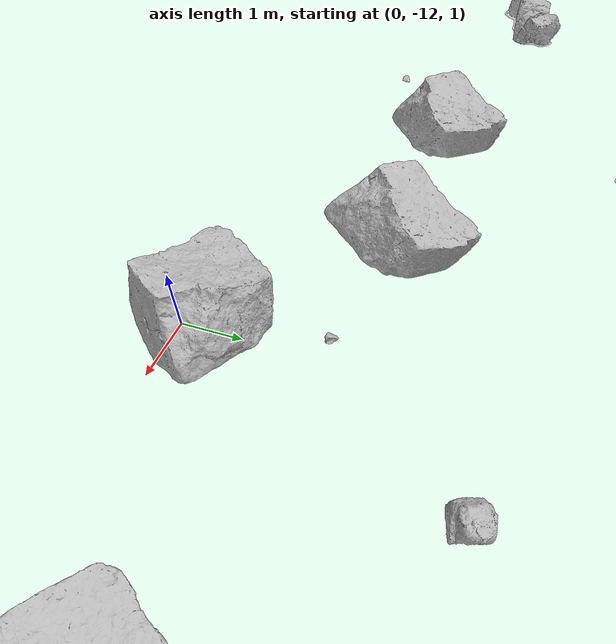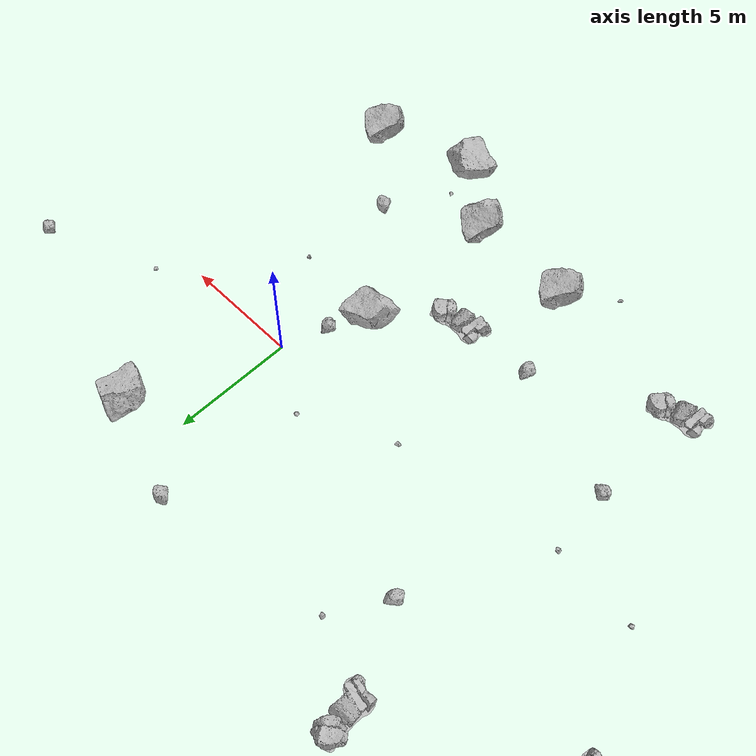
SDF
<sdf version="1.7">
 <world name="marsyard">
  <gravity>0 0 -9.81</gravity>
  <physics name="dart_physics" type="ignored">
   <max_step_size>0.003</max_step_size>
   <real_time_update_rate>333</real_time_update_rate>
   <real_time_factor>1.0</real_time_factor>
  </physics>
  <plugin filename="ignition-gazebo-physics-system" name="ignition::gazebo::systems::Physics"/>
  <plugin filename="ignition-gazebo-user-commands-system" name="ignition::gazebo::systems::UserCommands"/>
  <plugin filename="ignition-gazebo-scene-broadcaster-system" name="ignition::gazebo::systems::SceneBroadcaster"/>
  <plugin filename="ignition-gazebo-contact-system" name="ignition::gazebo::systems::Contact"/>
  <scene>
   <ambient>0.95 0.95 0.95 1</ambient>
   <background>0.70 0.70 0.70 1</background>
   <shadows>false</shadows>
  </scene>
  <light type="directional" name="sun">
   <cast_shadows>false</cast_shadows>
   <pose>0 0 30 0 0 0</pose>
   <diffuse>1 1 1 1</diffuse>
   <specular>0.15 0.15 0.15 1</specular>
   <direction>-0.35 0.1 -0.93</direction>
  </light>
  <model name="Rock_1">
   <static>true</static>
   <pose>-0.0020 -9.6341 1.5531 0.1037 0.2551 1.8670</pose>
   <link name="link">
    <visual name="visual">
     <geometry><mesh><uri>package://rock_generator/rocks_ws/rock_7/meshes/rock_7.stl</uri></mesh></geometry>
    </visual>
    <collision name="collision">
     <geometry><mesh><uri>package://rock_generator/rocks_ws/rock_7/meshes/rock_7.stl</uri></mesh></geometry>
    </collision>
   </link>
  </model>
  <model name="Rock_2">
   <static>true</static>
   <pose>-8.3352 -10.6096 1.1801 -2.8136 0.2970 1.1818</pose>
   <link name="link">
    <visual name="visual">
     <geometry><mesh><uri>package://rock_generator/rocks_ws/rock_7/meshes/rock_7.stl</uri></mesh></geometry>
    </visual>
    <collision name="collision">
     <geometry><mesh><uri>package://rock_generator/rocks_ws/rock_7/meshes/rock_7.stl</uri></mesh></geometry>
    </collision>
   </link>
  </model>
  <model name="Rock_3">
   <static>true</static>
   <pose>-16.8706 7.7609 1.1419 0.0245 -0.1679 -2.1383</pose>
   <link name="link">
    <visual name="visual">
     <geometry><mesh><uri>package://rock_generator/rocks_ws/rock_9/meshes/rock_9.stl</uri></mesh></geometry>
    </visual>
    <collision name="collision">
     <geometry><mesh><uri>package://rock_generator/rocks_ws/rock_9/meshes/rock_9.stl</uri></mesh></geometry>
    </collision>
   </link>
  </model>
  <model name="Rock_4">
   <static>true</static>
   <pose>-10.4994 4.3053 0.8368 0.2064 0.0919 -1.3269</pose>
   <link name="link">
    <visual name="visual">
     <geometry><mesh><uri>package://rock_generator/rocks_ws/rock_3/meshes/rock_3.stl</uri></mesh></geometry>
    </visual>
    <collision name="collision">
     <geometry><mesh><uri>package://rock_generator/rocks_ws/rock_3/meshes/rock_3.stl</uri></mesh></geometry>
    </collision>
   </link>
  </model>
  <model name="Rock_5">
   <static>true</static>
   <pose>-1.1401 -1.5235 1.1118 -0.2749 -0.3047 -1.1774</pose>
   <link name="link">
    <visual name="visual">
     <geometry><mesh><uri>package://rock_generator/rocks_ws/rock_3/meshes/rock_3.stl</uri></mesh></geometry>
    </visual>
    <collision name="collision">
     <geometry><mesh><uri>package://rock_generator/rocks_ws/rock_3/meshes/rock_3.stl</uri></mesh></geometry>
    </collision>
   </link>
  </model>
  <model name="Rock_6">
   <static>true</static>
   <pose>-18.9885 4.4978 1.2777 0.0304 0.0115 -1.2388</pose>
   <link name="link">
    <visual name="visual">
     <geometry><mesh><uri>package://rock_generator/rocks_ws/rock_2/meshes/rock_2.stl</uri></mesh></geometry>
    </visual>
   </link>
  </model>
  <model name="Rock_9">
   <static>true</static>
   <pose>-13.3400 -0.8215 1.2104 -0.0648 0.0752 0.5914</pose>
   <link name="link">
    <visual name="visual">
     <geometry><mesh><uri>package://rock_generator/rocks_ws/rock_9/meshes/rock_9.stl</uri></mesh></geometry>
    </visual>
    <collision name="collision">
     <geometry><mesh><uri>package://rock_generator/rocks_ws/rock_9/meshes/rock_9.stl</uri></mesh></geometry>
    </collision>
   </link>
  </model>
  <model name="Rock_10">
   <static>true</static>
   <pose>-2.1141 -9.2907 1.5496 -0.4307 -0.0942 0.1734</pose>
   <link name="link">
    <visual name="visual">
     <geometry><mesh><uri>package://rock_generator/rocks_ws/rock_1/meshes/rock_1.stl</uri></mesh></geometry>
    </visual>
   </link>
  </model>
  <model name="Rock_11">
   <static>true</static>
   <pose>-6.4489 -9.2301 0.9870 -0.1648 0.0462 -0.0967</pose>
   <link name="link">
    <visual name="visual">
     <geometry><mesh><uri>package://rock_generator/rocks_ws/rock_1/meshes/rock_1.stl</uri></mesh></geometry>
    </visual>
    <collision name="collision">
     <geometry><mesh><uri>package://rock_generator/rocks_ws/rock_1/meshes/rock_1.stl</uri></mesh></geometry>
    </collision>
   </link>
  </model>
  <model name="Rock_12">
   <static>true</static>
   <pose>-2.0835 -2.7994 1.4956 -0.2031 -0.0877 -0.7473</pose>
   <link name="link">
    <visual name="visual">
     <geometry><mesh><uri>package://rock_generator/rocks_ws/rock_1/meshes/rock_1.stl</uri></mesh></geometry>
    </visual>
   </link>
  </model>
  <model name="Rock_20">
   <static>true</static>
   <pose>-4.5401 -5.1935 1.3079 -0.0086 0.0278 -2.9567</pose>
   <link name="link">
    <visual name="visual">
     <geometry><mesh><uri>package://rock_generator/rocks_ws/rock_2/meshes/rock_2.stl</uri></mesh></geometry>
    </visual>
    <collision name="collision">
     <geometry><mesh><uri>package://rock_generator/rocks_ws/rock_2/meshes/rock_2.stl</uri></mesh></geometry>
    </collision>
   </link>
  </model>
  <model name="Rock_21">
   <static>true</static>
   <pose>-2.2880 7.6176 1.1549 -0.1865 -0.0880 0.3182</pose>
   <link name="link">
    <visual name="visual">
     <geometry><mesh><uri>package://rock_generator/rocks_ws/rock_3/meshes/rock_3.stl</uri></mesh></geometry>
    </visual>
   </link>
  </model>
  <model name="Rock_23">
   <static>true</static>
   <pose>-17.2331 -10.1949 -114.0820 0.0000 0.0000 -1.7188</pose>
   <link name="link">
    <visual name="visual">
     <geometry><mesh><uri>package://rock_generator/rocks_ws/rock_7/meshes/rock_7.stl</uri></mesh></geometry>
    </visual>
   </link>
  </model>
  <model name="Rock_24">
   <static>true</static>
   <pose>-13.0306 -3.5896 1.1674 -0.0015 0.0008 -2.8170</pose>
   <link name="link">
    <visual name="visual">
     <geometry><mesh><uri>package://rock_generator/rocks_ws/rock_3/meshes/rock_3.stl</uri></mesh></geometry>
    </visual>
    <collision name="collision">
     <geometry><mesh><uri>package://rock_generator/rocks_ws/rock_3/meshes/rock_3.stl</uri></mesh></geometry>
    </collision>
   </link>
  </model>
  <model name="Rock_25">
   <static>true</static>
   <pose>-6.7312 0.2790 1.3869 0.0001 0.0056 1.7446</pose>
   <link name="link">
    <visual name="visual">
     <geometry><mesh><uri>package://rock_generator/rocks_ws/rock_9/meshes/rock_9.stl</uri></mesh></geometry>
    </visual>
   </link>
  </model>
  <model name="Rock_27">
   <static>true</static>
   <pose>10.3485 3.4287 1.3917 0.1307 0.1036 -2.7243</pose>
   <link name="link">
    <visual name="visual">
     <geometry><mesh><uri>package://rock_generator/rocks_ws/rock_3/meshes/rock_3.stl</uri></mesh></geometry>
    </visual>
    <collision name="collision">
     <geometry><mesh><uri>package://rock_generator/rocks_ws/rock_3/meshes/rock_3.stl</uri></mesh></geometry>
    </collision>
   </link>
  </model>
  <model name="Rock_28">
   <static>true</static>
   <pose>0.3385 -11.3144 1.7097 -0.1518 -0.0055 1.7958</pose>
   <link name="link">
    <visual name="visual">
     <geometry><mesh><uri>package://rock_generator/rocks_ws/rock_1/meshes/rock_1.stl</uri></mesh></geometry>
    </visual>
   </link>
  </model>
  <model name="Rock_31">
   <static>true</static>
   <pose>1.8010 6.0335 1.2023 -0.0706 -0.2931 -2.6842</pose>
   <link name="link">
    <visual name="visual">
     <geometry><mesh><uri>package://rock_generator/rocks_ws/rock_1/meshes/rock_1.stl</uri></mesh></geometry>
    </visual>
    <collision name="collision">
     <geometry><mesh><uri>package://rock_generator/rocks_ws/rock_1/meshes/rock_1.stl</uri></mesh></geometry>
    </collision>
   </link>
  </model>
  <model name="Rock_32">
   <static>true</static>
   <pose>-12.1971 8.1976 1.2060 -0.0015 -0.0370 -1.4144</pose>
   <link name="link">
    <visual name="visual">
     <geometry><mesh><uri>package://rock_generator/rocks_ws/rock_2/meshes/rock_2.stl</uri></mesh></geometry>
    </visual>
   </link>
  </model>
  <model name="Rock_34">
   <static>true</static>
   <pose>-12.9280 -8.1219 0.9370 -0.0508 -0.0381 -2.8710</pose>
   <link name="link">
    <visual name="visual">
     <geometry><mesh><uri>package://rock_generator/rocks_ws/rock_2/meshes/rock_2.stl</uri></mesh></geometry>
    </visual>
   </link>
  </model>
  <model name="Rock_35">
   <static>true</static>
   <pose>11.9983 9.7955 0.9297 3.1225 0.1038 1.1404</pose>
   <link name="link">
    <visual name="visual">
     <geometry><mesh><uri>package://rock_generator/rocks_ws/rock_9/meshes/rock_9.stl</uri></mesh></geometry>
    </visual>
   </link>
  </model>
  <model name="Rock_36">
   <static>true</static>
   <pose>-3.0243 1.8919 0.8799 0.6301 -0.0307 1.0143</pose>
   <link name="link">
    <visual name="visual">
     <geometry><mesh><uri>package://rock_generator/rocks_ws/rock_9/meshes/rock_9.stl</uri></mesh></geometry>
    </visual>
   </link>
  </model>
  <model name="Rock_39">
   <static>true</static>
   <pose>5.9438 1.4943 0.9546 0.0375 -0.1052 -2.1734</pose>
   <link name="link">
    <visual name="visual">
     <geometry><mesh><uri>package://rock_generator/rocks_ws/rock_9/meshes/rock_9.stl</uri></mesh></geometry>
    </visual>
    <collision name="collision">
     <geometry><mesh><uri>package://rock_generator/rocks_ws/rock_9/meshes/rock_9.stl</uri></mesh></geometry>
    </collision>
   </link>
  </model>
  <model name="Rock_40">
   <static>true</static>
   <pose>-16.7046 -0.4993 1.2372 -0.0054 -0.0081 -2.6433</pose>
   <link name="link">
    <visual name="visual">
     <geometry><mesh><uri>package://rock_generator/rocks_ws/rock_9/meshes/rock_9.stl</uri></mesh></geometry>
    </visual>
   </link>
  </model>
  <model name="Rock_41">
   <static>true</static>
   <pose>1.6456 -3.0666 1.6018 -0.0447 -0.1272 -1.0251</pose>
   <link name="link">
    <visual name="visual">
     <geometry><mesh><uri>package://rock_generator/rocks_ws/rock_7/meshes/rock_7.stl</uri></mesh></geometry>
    </visual>
   </link>
  </model>
  <model name="Rock_43">
   <static>true</static>
   <pose>-9.4269 6.4947 1.3186 -0.0037 0.0101 0.3522</pose>
   <link name="link">
    <visual name="visual">
     <geometry><mesh><uri>package://rock_generator/rocks_ws/rock_9/meshes/rock_9.stl</uri></mesh></geometry>
    </visual>
   </link>
  </model>
  <model name="Rock_44">
   <static>true</static>
   <pose>4.4100 -10.1340 1.7216 -0.2530 -0.0330 0.1565</pose>
   <link name="link">
    <visual name="visual">
     <geometry><mesh><uri>package://rock_generator/rocks_ws/rock_1/meshes/rock_1.stl</uri></mesh></geometry>
    </visual>
   </link>
  </model>
  <model name="Rock_45">
   <static>true</static>
   <pose>2.3505 -11.7096 -2359.7800 0.0000 0.0000 -1.4420</pose>
   <link name="link">
    <visual name="visual">
     <geometry><mesh><uri>package://rock_generator/rocks_ws/rock_9/meshes/rock_9.stl</uri></mesh></geometry>
    </visual>
    <collision name="collision">
     <geometry><mesh><uri>package://rock_generator/rocks_ws/rock_9/meshes/rock_9.stl</uri></mesh></geometry>
    </collision>
   </link>
  </model>
  <model name="Rock_46">
   <static>true</static>
   <pose>1.7470 -7.4101 1.0845 -0.3983 0.0244 -0.1512</pose>
   <link name="link">
    <visual name="visual">
     <geometry><mesh><uri>package://rock_generator/rocks_ws/rock_3/meshes/rock_3.stl</uri></mesh></geometry>
    </visual>
   </link>
  </model>
  <model name="Rock_47">
   <static>true</static>
   <pose>-7.8795 -5.3923 1.1771 0.0284 -0.0086 -0.8677</pose>
   <link name="link">
    <visual name="visual">
     <geometry><mesh><uri>package://rock_generator/rocks_ws/rock_3/meshes/rock_3.stl</uri></mesh></geometry>
    </visual>
    <collision name="collision">
     <geometry><mesh><uri>package://rock_generator/rocks_ws/rock_3/meshes/rock_3.stl</uri></mesh></geometry>
    </collision>
   </link>
  </model>
 </world>
</sdf>
